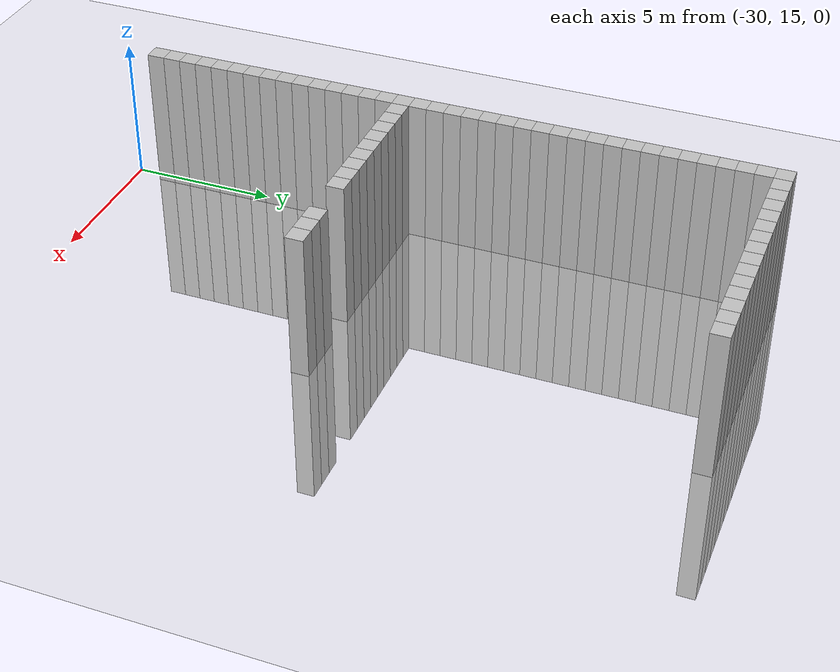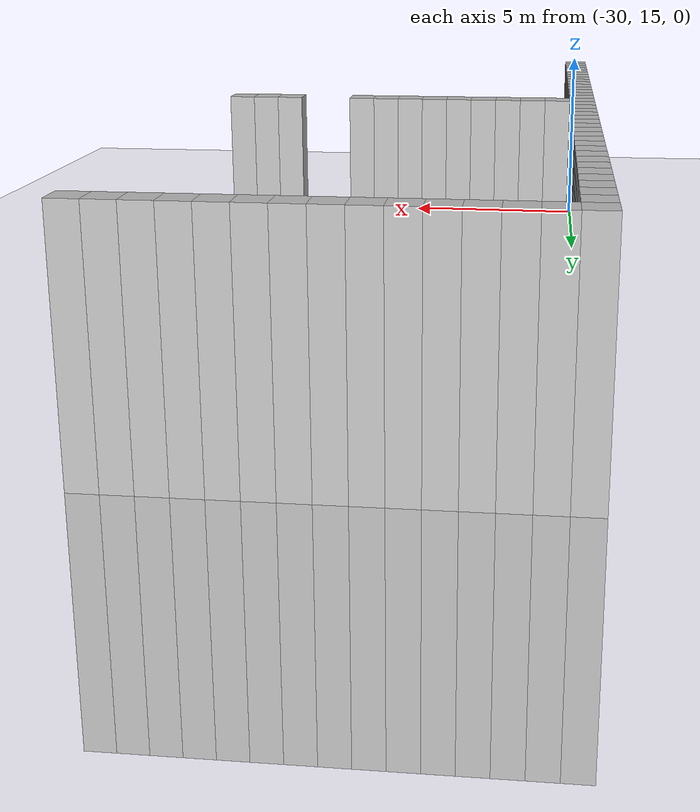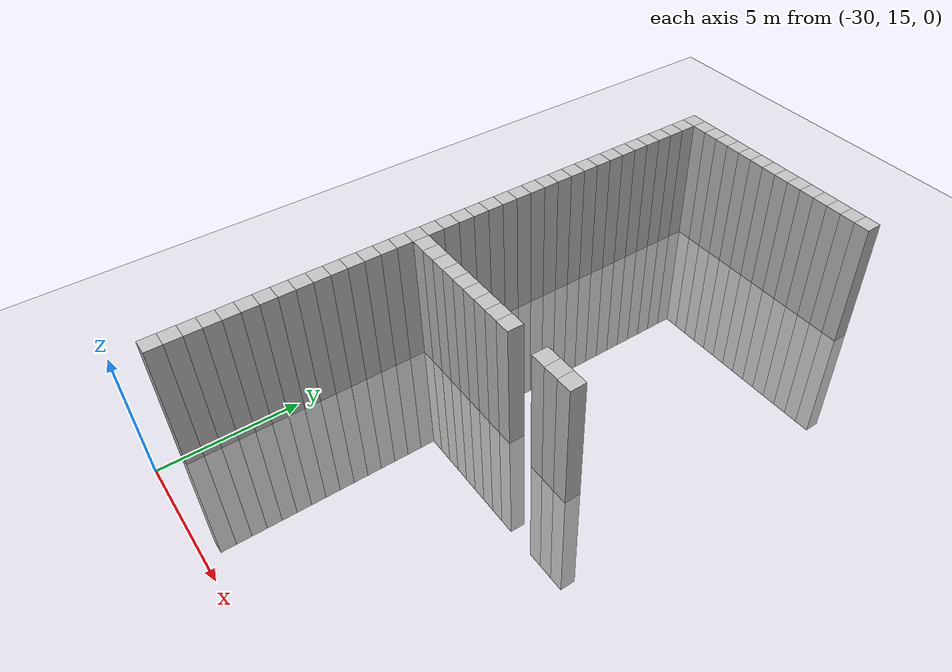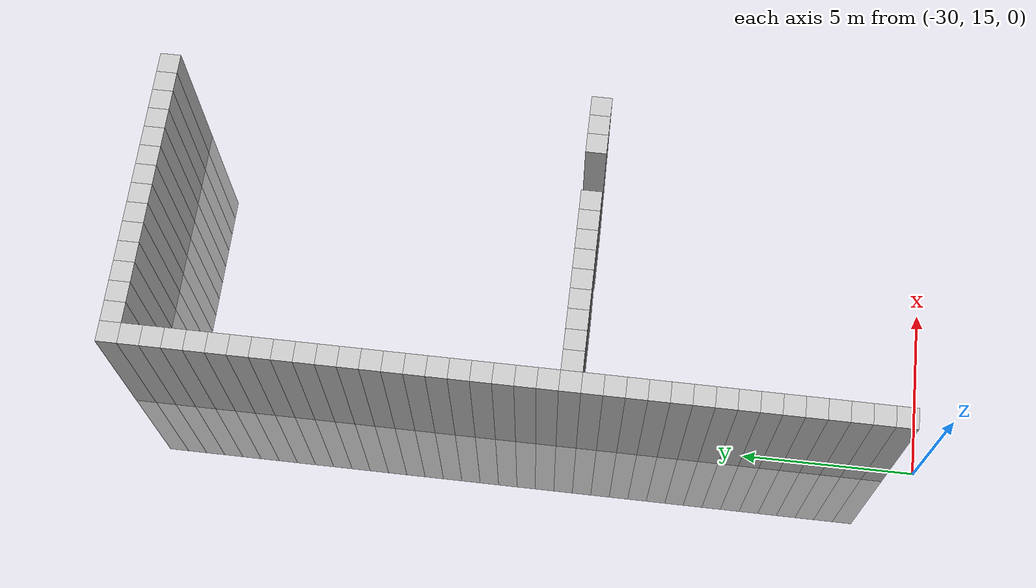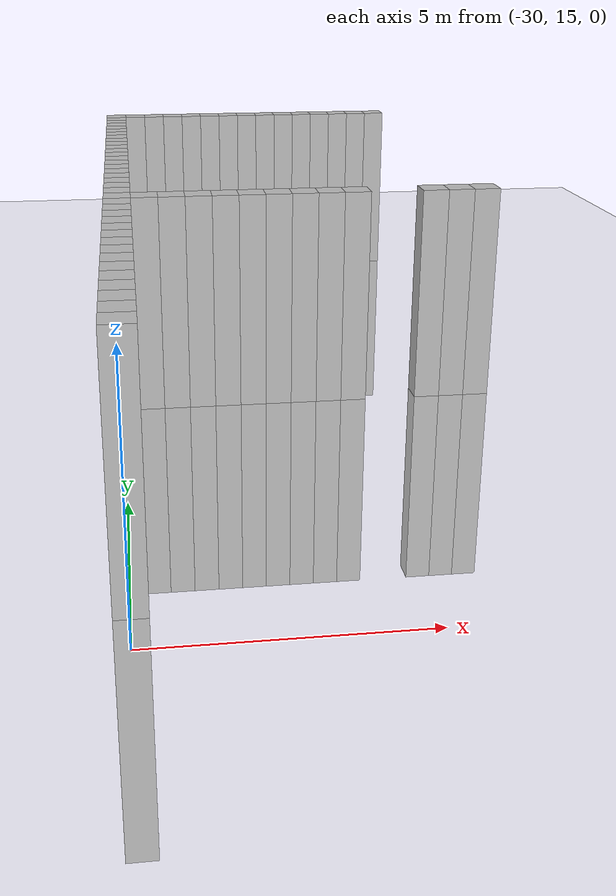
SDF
<sdf version="1.6">
 <world name="default">
  <model name="ground_plane">
   <static>1</static>
   <link name="link">
    <collision name="collision">
     <geometry><plane><normal>0 0 1</normal><size>100 100</size></plane></geometry>
     <surface><friction><ode><mu>100</mu><mu2>50</mu2></ode></friction></surface>
    </collision>
    <visual name="visual">
     <cast_shadows>0</cast_shadows>
     <geometry><plane><normal>0 0 1</normal><size>100 100</size></plane></geometry>
     <material>
      <script><uri>file://media/materials/scripts/gazebo.material</uri><name>Gazebo/Grey</name></script>
     </material>
    </visual>
   </link>
  </model>
  <model name="unit_cylinder_360">
   <static>1</static>
   <pose>-30 16.2 0 0 -0 0</pose>
   <link name="link">
    <inertial>
     <mass>1</mass>
     <inertia><ixx>0.145833</ixx><ixy>0</ixy><ixz>0</ixz><iyy>0.145833</iyy><iyz>0</iyz><izz>0.125</izz></inertia>
    </inertial>
    <collision name="collision"><geometry><box><size>0.6 0.6 10</size></box></geometry></collision>
    <visual name="visual">
     <geometry><box><size>0.6 0.6 10</size></box></geometry>
     <material><ambient>0.753 0.753 0.753 1</ambient><diffuse>0.753 0.753 0.753 1</diffuse></material>
     <material>
      <script><name>Gazebo/Grey</name><uri>file://media/materials/scripts/gazebo.material</uri></script>
     </material>
    </visual>
   </link>
  </model>
  <model name="unit_cylinder_361">
   <static>1</static>
   <pose>-30 16.8 0 0 -0 0</pose>
   <link name="link">
    <inertial>
     <mass>1</mass>
     <inertia><ixx>0.145833</ixx><ixy>0</ixy><ixz>0</ixz><iyy>0.145833</iyy><iyz>0</iyz><izz>0.125</izz></inertia>
    </inertial>
    <collision name="collision"><geometry><box><size>0.6 0.6 10</size></box></geometry></collision>
    <visual name="visual">
     <geometry><box><size>0.6 0.6 10</size></box></geometry>
     <material><ambient>0.753 0.753 0.753 1</ambient><diffuse>0.753 0.753 0.753 1</diffuse></material>
     <material>
      <script><name>Gazebo/Grey</name><uri>file://media/materials/scripts/gazebo.material</uri></script>
     </material>
    </visual>
   </link>
  </model>
  <model name="unit_cylinder_362">
   <static>1</static>
   <pose>-30 17.4 0 0 -0 0</pose>
   <link name="link">
    <inertial>
     <mass>1</mass>
     <inertia><ixx>0.145833</ixx><ixy>0</ixy><ixz>0</ixz><iyy>0.145833</iyy><iyz>0</iyz><izz>0.125</izz></inertia>
    </inertial>
    <collision name="collision"><geometry><box><size>0.6 0.6 10</size></box></geometry></collision>
    <visual name="visual">
     <geometry><box><size>0.6 0.6 10</size></box></geometry>
     <material><ambient>0.753 0.753 0.753 1</ambient><diffuse>0.753 0.753 0.753 1</diffuse></material>
     <material>
      <script><name>Gazebo/Grey</name><uri>file://media/materials/scripts/gazebo.material</uri></script>
     </material>
    </visual>
   </link>
  </model>
  <model name="unit_cylinder_363">
   <static>1</static>
   <pose>-30 18 0 0 -0 0</pose>
   <link name="link">
    <inertial>
     <mass>1</mass>
     <inertia><ixx>0.145833</ixx><ixy>0</ixy><ixz>0</ixz><iyy>0.145833</iyy><iyz>0</iyz><izz>0.125</izz></inertia>
    </inertial>
    <collision name="collision"><geometry><box><size>0.6 0.6 10</size></box></geometry></collision>
    <visual name="visual">
     <geometry><box><size>0.6 0.6 10</size></box></geometry>
     <material><ambient>0.753 0.753 0.753 1</ambient><diffuse>0.753 0.753 0.753 1</diffuse></material>
     <material>
      <script><name>Gazebo/Grey</name><uri>file://media/materials/scripts/gazebo.material</uri></script>
     </material>
    </visual>
   </link>
  </model>
  <model name="unit_cylinder_364">
   <static>1</static>
   <pose>-30 18.6 0 0 -0 0</pose>
   <link name="link">
    <inertial>
     <mass>1</mass>
     <inertia><ixx>0.145833</ixx><ixy>0</ixy><ixz>0</ixz><iyy>0.145833</iyy><iyz>0</iyz><izz>0.125</izz></inertia>
    </inertial>
    <collision name="collision"><geometry><box><size>0.6 0.6 10</size></box></geometry></collision>
    <visual name="visual">
     <geometry><box><size>0.6 0.6 10</size></box></geometry>
     <material><ambient>0.753 0.753 0.753 1</ambient><diffuse>0.753 0.753 0.753 1</diffuse></material>
     <material>
      <script><name>Gazebo/Grey</name><uri>file://media/materials/scripts/gazebo.material</uri></script>
     </material>
    </visual>
   </link>
  </model>
  <model name="unit_cylinder_365">
   <static>1</static>
   <pose>-30 19.2 0 0 -0 0</pose>
   <link name="link">
    <inertial>
     <mass>1</mass>
     <inertia><ixx>0.145833</ixx><ixy>0</ixy><ixz>0</ixz><iyy>0.145833</iyy><iyz>0</iyz><izz>0.125</izz></inertia>
    </inertial>
    <collision name="collision"><geometry><box><size>0.6 0.6 10</size></box></geometry></collision>
    <visual name="visual">
     <geometry><box><size>0.6 0.6 10</size></box></geometry>
     <material><ambient>0.753 0.753 0.753 1</ambient><diffuse>0.753 0.753 0.753 1</diffuse></material>
     <material>
      <script><name>Gazebo/Grey</name><uri>file://media/materials/scripts/gazebo.material</uri></script>
     </material>
    </visual>
   </link>
  </model>
  <model name="unit_cylinder_366">
   <static>1</static>
   <pose>-30 19.8 0 0 -0 0</pose>
   <link name="link">
    <inertial>
     <mass>1</mass>
     <inertia><ixx>0.145833</ixx><ixy>0</ixy><ixz>0</ixz><iyy>0.145833</iyy><iyz>0</iyz><izz>0.125</izz></inertia>
    </inertial>
    <collision name="collision"><geometry><box><size>0.6 0.6 10</size></box></geometry></collision>
    <visual name="visual">
     <geometry><box><size>0.6 0.6 10</size></box></geometry>
     <material><ambient>0.753 0.753 0.753 1</ambient><diffuse>0.753 0.753 0.753 1</diffuse></material>
     <material>
      <script><name>Gazebo/Grey</name><uri>file://media/materials/scripts/gazebo.material</uri></script>
     </material>
    </visual>
   </link>
  </model>
  <model name="unit_cylinder_367">
   <static>1</static>
   <pose>-30 20.4 0 0 -0 0</pose>
   <link name="link">
    <inertial>
     <mass>1</mass>
     <inertia><ixx>0.145833</ixx><ixy>0</ixy><ixz>0</ixz><iyy>0.145833</iyy><iyz>0</iyz><izz>0.125</izz></inertia>
    </inertial>
    <collision name="collision"><geometry><box><size>0.6 0.6 10</size></box></geometry></collision>
    <visual name="visual">
     <geometry><box><size>0.6 0.6 10</size></box></geometry>
     <material><ambient>0.753 0.753 0.753 1</ambient><diffuse>0.753 0.753 0.753 1</diffuse></material>
     <material>
      <script><name>Gazebo/Grey</name><uri>file://media/materials/scripts/gazebo.material</uri></script>
     </material>
    </visual>
   </link>
  </model>
  <model name="unit_cylinder_368">
   <static>1</static>
   <pose>-30 21 0 0 -0 0</pose>
   <link name="link">
    <inertial>
     <mass>1</mass>
     <inertia><ixx>0.145833</ixx><ixy>0</ixy><ixz>0</ixz><iyy>0.145833</iyy><iyz>0</iyz><izz>0.125</izz></inertia>
    </inertial>
    <collision name="collision"><geometry><box><size>0.6 0.6 10</size></box></geometry></collision>
    <visual name="visual">
     <geometry><box><size>0.6 0.6 10</size></box></geometry>
     <material><ambient>0.753 0.753 0.753 1</ambient><diffuse>0.753 0.753 0.753 1</diffuse></material>
     <material>
      <script><name>Gazebo/Grey</name><uri>file://media/materials/scripts/gazebo.material</uri></script>
     </material>
    </visual>
   </link>
  </model>
  <model name="unit_cylinder_369">
   <static>1</static>
   <pose>-30 21.6 0 0 -0 0</pose>
   <link name="link">
    <inertial>
     <mass>1</mass>
     <inertia><ixx>0.145833</ixx><ixy>0</ixy><ixz>0</ixz><iyy>0.145833</iyy><iyz>0</iyz><izz>0.125</izz></inertia>
    </inertial>
    <collision name="collision"><geometry><box><size>0.6 0.6 10</size></box></geometry></collision>
    <visual name="visual">
     <geometry><box><size>0.6 0.6 10</size></box></geometry>
     <material><ambient>0.753 0.753 0.753 1</ambient><diffuse>0.753 0.753 0.753 1</diffuse></material>
     <material>
      <script><name>Gazebo/Grey</name><uri>file://media/materials/scripts/gazebo.material</uri></script>
     </material>
    </visual>
   </link>
  </model>
  <model name="unit_cylinder_370">
   <static>1</static>
   <pose>-30 22.2 0 0 -0 0</pose>
   <link name="link">
    <inertial>
     <mass>1</mass>
     <inertia><ixx>0.145833</ixx><ixy>0</ixy><ixz>0</ixz><iyy>0.145833</iyy><iyz>0</iyz><izz>0.125</izz></inertia>
    </inertial>
    <collision name="collision"><geometry><box><size>0.6 0.6 10</size></box></geometry></collision>
    <visual name="visual">
     <geometry><box><size>0.6 0.6 10</size></box></geometry>
     <material><ambient>0.753 0.753 0.753 1</ambient><diffuse>0.753 0.753 0.753 1</diffuse></material>
     <material>
      <script><name>Gazebo/Grey</name><uri>file://media/materials/scripts/gazebo.material</uri></script>
     </material>
    </visual>
   </link>
  </model>
  <model name="unit_cylinder_371">
   <static>1</static>
   <pose>-30 22.8 0 0 -0 0</pose>
   <link name="link">
    <inertial>
     <mass>1</mass>
     <inertia><ixx>0.145833</ixx><ixy>0</ixy><ixz>0</ixz><iyy>0.145833</iyy><iyz>0</iyz><izz>0.125</izz></inertia>
    </inertial>
    <collision name="collision"><geometry><box><size>0.6 0.6 10</size></box></geometry></collision>
    <visual name="visual">
     <geometry><box><size>0.6 0.6 10</size></box></geometry>
     <material><ambient>0.753 0.753 0.753 1</ambient><diffuse>0.753 0.753 0.753 1</diffuse></material>
     <material>
      <script><name>Gazebo/Grey</name><uri>file://media/materials/scripts/gazebo.material</uri></script>
     </material>
    </visual>
   </link>
  </model>
  <model name="unit_cylinder_372">
   <static>1</static>
   <pose>-30 23.4 0 0 -0 0</pose>
   <link name="link">
    <inertial>
     <mass>1</mass>
     <inertia><ixx>0.145833</ixx><ixy>0</ixy><ixz>0</ixz><iyy>0.145833</iyy><iyz>0</iyz><izz>0.125</izz></inertia>
    </inertial>
    <collision name="collision"><geometry><box><size>0.6 0.6 10</size></box></geometry></collision>
    <visual name="visual">
     <geometry><box><size>0.6 0.6 10</size></box></geometry>
     <material><ambient>0.753 0.753 0.753 1</ambient><diffuse>0.753 0.753 0.753 1</diffuse></material>
     <material>
      <script><name>Gazebo/Grey</name><uri>file://media/materials/scripts/gazebo.material</uri></script>
     </material>
    </visual>
   </link>
  </model>
  <model name="unit_cylinder_373">
   <static>1</static>
   <pose>-30 24 0 0 -0 0</pose>
   <link name="link">
    <inertial>
     <mass>1</mass>
     <inertia><ixx>0.145833</ixx><ixy>0</ixy><ixz>0</ixz><iyy>0.145833</iyy><iyz>0</iyz><izz>0.125</izz></inertia>
    </inertial>
    <collision name="collision"><geometry><box><size>0.6 0.6 10</size></box></geometry></collision>
    <visual name="visual">
     <geometry><box><size>0.6 0.6 10</size></box></geometry>
     <material><ambient>0.753 0.753 0.753 1</ambient><diffuse>0.753 0.753 0.753 1</diffuse></material>
     <material>
      <script><name>Gazebo/Grey</name><uri>file://media/materials/scripts/gazebo.material</uri></script>
     </material>
    </visual>
   </link>
  </model>
  <model name="unit_cylinder_374">
   <static>1</static>
   <pose>-30 24.6 0 0 -0 0</pose>
   <link name="link">
    <inertial>
     <mass>1</mass>
     <inertia><ixx>0.145833</ixx><ixy>0</ixy><ixz>0</ixz><iyy>0.145833</iyy><iyz>0</iyz><izz>0.125</izz></inertia>
    </inertial>
    <collision name="collision"><geometry><box><size>0.6 0.6 10</size></box></geometry></collision>
    <visual name="visual">
     <geometry><box><size>0.6 0.6 10</size></box></geometry>
     <material><ambient>0.753 0.753 0.753 1</ambient><diffuse>0.753 0.753 0.753 1</diffuse></material>
     <material>
      <script><name>Gazebo/Grey</name><uri>file://media/materials/scripts/gazebo.material</uri></script>
     </material>
    </visual>
   </link>
  </model>
  <model name="unit_cylinder_375">
   <static>1</static>
   <pose>-30 25.2 0 0 -0 0</pose>
   <link name="link">
    <inertial>
     <mass>1</mass>
     <inertia><ixx>0.145833</ixx><ixy>0</ixy><ixz>0</ixz><iyy>0.145833</iyy><iyz>0</iyz><izz>0.125</izz></inertia>
    </inertial>
    <collision name="collision"><geometry><box><size>0.6 0.6 10</size></box></geometry></collision>
    <visual name="visual">
     <geometry><box><size>0.6 0.6 10</size></box></geometry>
     <material><ambient>0.753 0.753 0.753 1</ambient><diffuse>0.753 0.753 0.753 1</diffuse></material>
     <material>
      <script><name>Gazebo/Grey</name><uri>file://media/materials/scripts/gazebo.material</uri></script>
     </material>
    </visual>
   </link>
  </model>
  <model name="unit_cylinder_376">
   <static>1</static>
   <pose>-30 25.8 0 0 -0 0</pose>
   <link name="link">
    <inertial>
     <mass>1</mass>
     <inertia><ixx>0.145833</ixx><ixy>0</ixy><ixz>0</ixz><iyy>0.145833</iyy><iyz>0</iyz><izz>0.125</izz></inertia>
    </inertial>
    <collision name="collision"><geometry><box><size>0.6 0.6 10</size></box></geometry></collision>
    <visual name="visual">
     <geometry><box><size>0.6 0.6 10</size></box></geometry>
     <material><ambient>0.753 0.753 0.753 1</ambient><diffuse>0.753 0.753 0.753 1</diffuse></material>
     <material>
      <script><name>Gazebo/Grey</name><uri>file://media/materials/scripts/gazebo.material</uri></script>
     </material>
    </visual>
   </link>
  </model>
  <model name="unit_cylinder_377">
   <static>1</static>
   <pose>-30 26.4 0 0 -0 0</pose>
   <link name="link">
    <inertial>
     <mass>1</mass>
     <inertia><ixx>0.145833</ixx><ixy>0</ixy><ixz>0</ixz><iyy>0.145833</iyy><iyz>0</iyz><izz>0.125</izz></inertia>
    </inertial>
    <collision name="collision"><geometry><box><size>0.6 0.6 10</size></box></geometry></collision>
    <visual name="visual">
     <geometry><box><size>0.6 0.6 10</size></box></geometry>
     <material><ambient>0.753 0.753 0.753 1</ambient><diffuse>0.753 0.753 0.753 1</diffuse></material>
     <material>
      <script><name>Gazebo/Grey</name><uri>file://media/materials/scripts/gazebo.material</uri></script>
     </material>
    </visual>
   </link>
  </model>
  <model name="unit_cylinder_378">
   <static>1</static>
   <pose>-30 27 0 0 -0 0</pose>
   <link name="link">
    <inertial>
     <mass>1</mass>
     <inertia><ixx>0.145833</ixx><ixy>0</ixy><ixz>0</ixz><iyy>0.145833</iyy><iyz>0</iyz><izz>0.125</izz></inertia>
    </inertial>
    <collision name="collision"><geometry><box><size>0.6 0.6 10</size></box></geometry></collision>
    <visual name="visual">
     <geometry><box><size>0.6 0.6 10</size></box></geometry>
     <material><ambient>0.753 0.753 0.753 1</ambient><diffuse>0.753 0.753 0.753 1</diffuse></material>
     <material>
      <script><name>Gazebo/Grey</name><uri>file://media/materials/scripts/gazebo.material</uri></script>
     </material>
    </visual>
   </link>
  </model>
  <model name="unit_cylinder_379">
   <static>1</static>
   <pose>-30 27.6 0 0 -0 0</pose>
   <link name="link">
    <inertial>
     <mass>1</mass>
     <inertia><ixx>0.145833</ixx><ixy>0</ixy><ixz>0</ixz><iyy>0.145833</iyy><iyz>0</iyz><izz>0.125</izz></inertia>
    </inertial>
    <collision name="collision"><geometry><box><size>0.6 0.6 10</size></box></geometry></collision>
    <visual name="visual">
     <geometry><box><size>0.6 0.6 10</size></box></geometry>
     <material><ambient>0.753 0.753 0.753 1</ambient><diffuse>0.753 0.753 0.753 1</diffuse></material>
     <material>
      <script><name>Gazebo/Grey</name><uri>file://media/materials/scripts/gazebo.material</uri></script>
     </material>
    </visual>
   </link>
  </model>
  <model name="unit_cylinder_380">
   <static>1</static>
   <pose>-30 28.2 0 0 -0 0</pose>
   <link name="link">
    <inertial>
     <mass>1</mass>
     <inertia><ixx>0.145833</ixx><ixy>0</ixy><ixz>0</ixz><iyy>0.145833</iyy><iyz>0</iyz><izz>0.125</izz></inertia>
    </inertial>
    <collision name="collision"><geometry><box><size>0.6 0.6 10</size></box></geometry></collision>
    <visual name="visual">
     <geometry><box><size>0.6 0.6 10</size></box></geometry>
     <material><ambient>0.753 0.753 0.753 1</ambient><diffuse>0.753 0.753 0.753 1</diffuse></material>
     <material>
      <script><name>Gazebo/Grey</name><uri>file://media/materials/scripts/gazebo.material</uri></script>
     </material>
    </visual>
   </link>
  </model>
  <model name="unit_cylinder_381">
   <static>1</static>
   <pose>-30 28.8 0 0 -0 0</pose>
   <link name="link">
    <inertial>
     <mass>1</mass>
     <inertia><ixx>0.145833</ixx><ixy>0</ixy><ixz>0</ixz><iyy>0.145833</iyy><iyz>0</iyz><izz>0.125</izz></inertia>
    </inertial>
    <collision name="collision"><geometry><box><size>0.6 0.6 10</size></box></geometry></collision>
    <visual name="visual">
     <geometry><box><size>0.6 0.6 10</size></box></geometry>
     <material><ambient>0.753 0.753 0.753 1</ambient><diffuse>0.753 0.753 0.753 1</diffuse></material>
     <material>
      <script><name>Gazebo/Grey</name><uri>file://media/materials/scripts/gazebo.material</uri></script>
     </material>
    </visual>
   </link>
  </model>
  <model name="unit_cylinder_382">
   <static>1</static>
   <pose>-30 29.4 0 0 -0 0</pose>
   <link name="link">
    <inertial>
     <mass>1</mass>
     <inertia><ixx>0.145833</ixx><ixy>0</ixy><ixz>0</ixz><iyy>0.145833</iyy><iyz>0</iyz><izz>0.125</izz></inertia>
    </inertial>
    <collision name="collision"><geometry><box><size>0.6 0.6 10</size></box></geometry></collision>
    <visual name="visual">
     <geometry><box><size>0.6 0.6 10</size></box></geometry>
     <material><ambient>0.753 0.753 0.753 1</ambient><diffuse>0.753 0.753 0.753 1</diffuse></material>
     <material>
      <script><name>Gazebo/Grey</name><uri>file://media/materials/scripts/gazebo.material</uri></script>
     </material>
    </visual>
   </link>
  </model>
  <model name="unit_cylinder_383">
   <static>1</static>
   <pose>-30 30 0 0 -0 0</pose>
   <link name="link">
    <inertial>
     <mass>1</mass>
     <inertia><ixx>0.145833</ixx><ixy>0</ixy><ixz>0</ixz><iyy>0.145833</iyy><iyz>0</iyz><izz>0.125</izz></inertia>
    </inertial>
    <collision name="collision"><geometry><box><size>0.6 0.6 10</size></box></geometry></collision>
    <visual name="visual">
     <geometry><box><size>0.6 0.6 10</size></box></geometry>
     <material><ambient>0.753 0.753 0.753 1</ambient><diffuse>0.753 0.753 0.753 1</diffuse></material>
     <material>
      <script><name>Gazebo/Grey</name><uri>file://media/materials/scripts/gazebo.material</uri></script>
     </material>
    </visual>
   </link>
  </model>
  <model name="unit_cylinder_384">
   <static>1</static>
   <pose>-30 30.6 0 0 -0 0</pose>
   <link name="link">
    <inertial>
     <mass>1</mass>
     <inertia><ixx>0.145833</ixx><ixy>0</ixy><ixz>0</ixz><iyy>0.145833</iyy><iyz>0</iyz><izz>0.125</izz></inertia>
    </inertial>
    <collision name="collision"><geometry><box><size>0.6 0.6 10</size></box></geometry></collision>
    <visual name="visual">
     <geometry><box><size>0.6 0.6 10</size></box></geometry>
     <material><ambient>0.753 0.753 0.753 1</ambient><diffuse>0.753 0.753 0.753 1</diffuse></material>
     <material>
      <script><name>Gazebo/Grey</name><uri>file://media/materials/scripts/gazebo.material</uri></script>
     </material>
    </visual>
   </link>
  </model>
  <model name="unit_cylinder_385">
   <static>1</static>
   <pose>-30 31.2 0 0 -0 0</pose>
   <link name="link">
    <inertial>
     <mass>1</mass>
     <inertia><ixx>0.145833</ixx><ixy>0</ixy><ixz>0</ixz><iyy>0.145833</iyy><iyz>0</iyz><izz>0.125</izz></inertia>
    </inertial>
    <collision name="collision"><geometry><box><size>0.6 0.6 10</size></box></geometry></collision>
    <visual name="visual">
     <geometry><box><size>0.6 0.6 10</size></box></geometry>
     <material><ambient>0.753 0.753 0.753 1</ambient><diffuse>0.753 0.753 0.753 1</diffuse></material>
     <material>
      <script><name>Gazebo/Grey</name><uri>file://media/materials/scripts/gazebo.material</uri></script>
     </material>
    </visual>
   </link>
  </model>
  <model name="unit_cylinder_386">
   <static>1</static>
   <pose>-30 31.8 0 0 -0 0</pose>
   <link name="link">
    <inertial>
     <mass>1</mass>
     <inertia><ixx>0.145833</ixx><ixy>0</ixy><ixz>0</ixz><iyy>0.145833</iyy><iyz>0</iyz><izz>0.125</izz></inertia>
    </inertial>
    <collision name="collision"><geometry><box><size>0.6 0.6 10</size></box></geometry></collision>
    <visual name="visual">
     <geometry><box><size>0.6 0.6 10</size></box></geometry>
     <material><ambient>0.753 0.753 0.753 1</ambient><diffuse>0.753 0.753 0.753 1</diffuse></material>
     <material>
      <script><name>Gazebo/Grey</name><uri>file://media/materials/scripts/gazebo.material</uri></script>
     </material>
    </visual>
   </link>
  </model>
  <model name="unit_cylinder_387">
   <static>1</static>
   <pose>-30 32.4 0 0 -0 0</pose>
   <link name="link">
    <inertial>
     <mass>1</mass>
     <inertia><ixx>0.145833</ixx><ixy>0</ixy><ixz>0</ixz><iyy>0.145833</iyy><iyz>0</iyz><izz>0.125</izz></inertia>
    </inertial>
    <collision name="collision"><geometry><box><size>0.6 0.6 10</size></box></geometry></collision>
    <visual name="visual">
     <geometry><box><size>0.6 0.6 10</size></box></geometry>
     <material><ambient>0.753 0.753 0.753 1</ambient><diffuse>0.753 0.753 0.753 1</diffuse></material>
     <material>
      <script><name>Gazebo/Grey</name><uri>file://media/materials/scripts/gazebo.material</uri></script>
     </material>
    </visual>
   </link>
  </model>
  <model name="unit_cylinder_388">
   <static>1</static>
   <pose>-30 33 0 0 -0 0</pose>
   <link name="link">
    <inertial>
     <mass>1</mass>
     <inertia><ixx>0.145833</ixx><ixy>0</ixy><ixz>0</ixz><iyy>0.145833</iyy><iyz>0</iyz><izz>0.125</izz></inertia>
    </inertial>
    <collision name="collision"><geometry><box><size>0.6 0.6 10</size></box></geometry></collision>
    <visual name="visual">
     <geometry><box><size>0.6 0.6 10</size></box></geometry>
     <material><ambient>0.753 0.753 0.753 1</ambient><diffuse>0.753 0.753 0.753 1</diffuse></material>
     <material>
      <script><name>Gazebo/Grey</name><uri>file://media/materials/scripts/gazebo.material</uri></script>
     </material>
    </visual>
   </link>
  </model>
  <model name="unit_cylinder_389">
   <static>1</static>
   <pose>-30 33.6 0 0 -0 0</pose>
   <link name="link">
    <inertial>
     <mass>1</mass>
     <inertia><ixx>0.145833</ixx><ixy>0</ixy><ixz>0</ixz><iyy>0.145833</iyy><iyz>0</iyz><izz>0.125</izz></inertia>
    </inertial>
    <collision name="collision"><geometry><box><size>0.6 0.6 10</size></box></geometry></collision>
    <visual name="visual">
     <geometry><box><size>0.6 0.6 10</size></box></geometry>
     <material><ambient>0.753 0.753 0.753 1</ambient><diffuse>0.753 0.753 0.753 1</diffuse></material>
     <material>
      <script><name>Gazebo/Grey</name><uri>file://media/materials/scripts/gazebo.material</uri></script>
     </material>
    </visual>
   </link>
  </model>
  <model name="unit_cylinder_390">
   <static>1</static>
   <pose>-30 34.2 0 0 -0 0</pose>
   <link name="link">
    <inertial>
     <mass>1</mass>
     <inertia><ixx>0.145833</ixx><ixy>0</ixy><ixz>0</ixz><iyy>0.145833</iyy><iyz>0</iyz><izz>0.125</izz></inertia>
    </inertial>
    <collision name="collision"><geometry><box><size>0.6 0.6 10</size></box></geometry></collision>
    <visual name="visual">
     <geometry><box><size>0.6 0.6 10</size></box></geometry>
     <material><ambient>0.753 0.753 0.753 1</ambient><diffuse>0.753 0.753 0.753 1</diffuse></material>
     <material>
      <script><name>Gazebo/Grey</name><uri>file://media/materials/scripts/gazebo.material</uri></script>
     </material>
    </visual>
   </link>
  </model>
  <model name="unit_cylinder_391">
   <static>1</static>
   <pose>-30 34.8 0 0 -0 0</pose>
   <link name="link">
    <inertial>
     <mass>1</mass>
     <inertia><ixx>0.145833</ixx><ixy>0</ixy><ixz>0</ixz><iyy>0.145833</iyy><iyz>0</iyz><izz>0.125</izz></inertia>
    </inertial>
    <collision name="collision"><geometry><box><size>0.6 0.6 10</size></box></geometry></collision>
    <visual name="visual">
     <geometry><box><size>0.6 0.6 10</size></box></geometry>
     <material><ambient>0.753 0.753 0.753 1</ambient><diffuse>0.753 0.753 0.753 1</diffuse></material>
     <material>
      <script><name>Gazebo/Grey</name><uri>file://media/materials/scripts/gazebo.material</uri></script>
     </material>
    </visual>
   </link>
  </model>
  <model name="unit_cylinder_392">
   <static>1</static>
   <pose>-30 35.4 0 0 -0 0</pose>
   <link name="link">
    <inertial>
     <mass>1</mass>
     <inertia><ixx>0.145833</ixx><ixy>0</ixy><ixz>0</ixz><iyy>0.145833</iyy><iyz>0</iyz><izz>0.125</izz></inertia>
    </inertial>
    <collision name="collision"><geometry><box><size>0.6 0.6 10</size></box></geometry></collision>
    <visual name="visual">
     <geometry><box><size>0.6 0.6 10</size></box></geometry>
     <material><ambient>0.753 0.753 0.753 1</ambient><diffuse>0.753 0.753 0.753 1</diffuse></material>
     <material>
      <script><name>Gazebo/Grey</name><uri>file://media/materials/scripts/gazebo.material</uri></script>
     </material>
    </visual>
   </link>
  </model>
  <model name="unit_cylinder_393">
   <static>1</static>
   <pose>-30 36 0 0 -0 0</pose>
   <link name="link">
    <inertial>
     <mass>1</mass>
     <inertia><ixx>0.145833</ixx><ixy>0</ixy><ixz>0</ixz><iyy>0.145833</iyy><iyz>0</iyz><izz>0.125</izz></inertia>
    </inertial>
    <collision name="collision"><geometry><box><size>0.6 0.6 10</size></box></geometry></collision>
    <visual name="visual">
     <geometry><box><size>0.6 0.6 10</size></box></geometry>
     <material><ambient>0.753 0.753 0.753 1</ambient><diffuse>0.753 0.753 0.753 1</diffuse></material>
     <material>
      <script><name>Gazebo/Grey</name><uri>file://media/materials/scripts/gazebo.material</uri></script>
     </material>
    </visual>
   </link>
  </model>
  <model name="unit_cylinder_394">
   <static>1</static>
   <pose>-30 36.6 0 0 -0 0</pose>
   <link name="link">
    <inertial>
     <mass>1</mass>
     <inertia><ixx>0.145833</ixx><ixy>0</ixy><ixz>0</ixz><iyy>0.145833</iyy><iyz>0</iyz><izz>0.125</izz></inertia>
    </inertial>
    <collision name="collision"><geometry><box><size>0.6 0.6 10</size></box></geometry></collision>
    <visual name="visual">
     <geometry><box><size>0.6 0.6 10</size></box></geometry>
     <material><ambient>0.753 0.753 0.753 1</ambient><diffuse>0.753 0.753 0.753 1</diffuse></material>
     <material>
      <script><name>Gazebo/Grey</name><uri>file://media/materials/scripts/gazebo.material</uri></script>
     </material>
    </visual>
   </link>
  </model>
  <model name="unit_cylinder_395">
   <static>1</static>
   <pose>-30 37.2 0 0 -0 0</pose>
   <link name="link">
    <inertial>
     <mass>1</mass>
     <inertia><ixx>0.145833</ixx><ixy>0</ixy><ixz>0</ixz><iyy>0.145833</iyy><iyz>0</iyz><izz>0.125</izz></inertia>
    </inertial>
    <collision name="collision"><geometry><box><size>0.6 0.6 10</size></box></geometry></collision>
    <visual name="visual">
     <geometry><box><size>0.6 0.6 10</size></box></geometry>
     <material><ambient>0.753 0.753 0.753 1</ambient><diffuse>0.753 0.753 0.753 1</diffuse></material>
     <material>
      <script><name>Gazebo/Grey</name><uri>file://media/materials/scripts/gazebo.material</uri></script>
     </material>
    </visual>
   </link>
  </model>
  <model name="unit_cylinder_396">
   <static>1</static>
   <pose>-30 37.8 0 0 -0 0</pose>
   <link name="link">
    <inertial>
     <mass>1</mass>
     <inertia><ixx>0.145833</ixx><ixy>0</ixy><ixz>0</ixz><iyy>0.145833</iyy><iyz>0</iyz><izz>0.125</izz></inertia>
    </inertial>
    <collision name="collision"><geometry><box><size>0.6 0.6 10</size></box></geometry></collision>
    <visual name="visual">
     <geometry><box><size>0.6 0.6 10</size></box></geometry>
     <material><ambient>0.753 0.753 0.753 1</ambient><diffuse>0.753 0.753 0.753 1</diffuse></material>
     <material>
      <script><name>Gazebo/Grey</name><uri>file://media/materials/scripts/gazebo.material</uri></script>
     </material>
    </visual>
   </link>
  </model>
  <model name="unit_cylinder_399">
   <static>1</static>
   <pose>-29.4 25.2 0 0 -0 0</pose>
   <link name="link">
    <inertial>
     <mass>1</mass>
     <inertia><ixx>0.145833</ixx><ixy>0</ixy><ixz>0</ixz><iyy>0.145833</iyy><iyz>0</iyz><izz>0.125</izz></inertia>
    </inertial>
    <collision name="collision"><geometry><box><size>0.6 0.6 10</size></box></geometry></collision>
    <visual name="visual">
     <geometry><box><size>0.6 0.6 10</size></box></geometry>
     <material><ambient>0.753 0.753 0.753 1</ambient><diffuse>0.753 0.753 0.753 1</diffuse></material>
     <material>
      <script><name>Gazebo/Grey</name><uri>file://media/materials/scripts/gazebo.material</uri></script>
     </material>
    </visual>
   </link>
  </model>
  <model name="unit_cylinder_400">
   <static>1</static>
   <pose>-29.4 37.8 0 0 -0 0</pose>
   <link name="link">
    <inertial>
     <mass>1</mass>
     <inertia><ixx>0.145833</ixx><ixy>0</ixy><ixz>0</ixz><iyy>0.145833</iyy><iyz>0</iyz><izz>0.125</izz></inertia>
    </inertial>
    <collision name="collision"><geometry><box><size>0.6 0.6 10</size></box></geometry></collision>
    <visual name="visual">
     <geometry><box><size>0.6 0.6 10</size></box></geometry>
     <material><ambient>0.753 0.753 0.753 1</ambient><diffuse>0.753 0.753 0.753 1</diffuse></material>
     <material>
      <script><name>Gazebo/Grey</name><uri>file://media/materials/scripts/gazebo.material</uri></script>
     </material>
    </visual>
   </link>
  </model>
  <model name="unit_cylinder_403">
   <static>1</static>
   <pose>-28.8 25.2 0 0 -0 0</pose>
   <link name="link">
    <inertial>
     <mass>1</mass>
     <inertia><ixx>0.145833</ixx><ixy>0</ixy><ixz>0</ixz><iyy>0.145833</iyy><iyz>0</iyz><izz>0.125</izz></inertia>
    </inertial>
    <collision name="collision"><geometry><box><size>0.6 0.6 10</size></box></geometry></collision>
    <visual name="visual">
     <geometry><box><size>0.6 0.6 10</size></box></geometry>
     <material><ambient>0.753 0.753 0.753 1</ambient><diffuse>0.753 0.753 0.753 1</diffuse></material>
     <material>
      <script><name>Gazebo/Grey</name><uri>file://media/materials/scripts/gazebo.material</uri></script>
     </material>
    </visual>
   </link>
  </model>
  <model name="unit_cylinder_404">
   <static>1</static>
   <pose>-28.8 37.8 0 0 -0 0</pose>
   <link name="link">
    <inertial>
     <mass>1</mass>
     <inertia><ixx>0.145833</ixx><ixy>0</ixy><ixz>0</ixz><iyy>0.145833</iyy><iyz>0</iyz><izz>0.125</izz></inertia>
    </inertial>
    <collision name="collision"><geometry><box><size>0.6 0.6 10</size></box></geometry></collision>
    <visual name="visual">
     <geometry><box><size>0.6 0.6 10</size></box></geometry>
     <material><ambient>0.753 0.753 0.753 1</ambient><diffuse>0.753 0.753 0.753 1</diffuse></material>
     <material>
      <script><name>Gazebo/Grey</name><uri>file://media/materials/scripts/gazebo.material</uri></script>
     </material>
    </visual>
   </link>
  </model>
  <model name="unit_cylinder_407">
   <static>1</static>
   <pose>-28.2 25.2 0 0 -0 0</pose>
   <link name="link">
    <inertial>
     <mass>1</mass>
     <inertia><ixx>0.145833</ixx><ixy>0</ixy><ixz>0</ixz><iyy>0.145833</iyy><iyz>0</iyz><izz>0.125</izz></inertia>
    </inertial>
    <collision name="collision"><geometry><box><size>0.6 0.6 10</size></box></geometry></collision>
    <visual name="visual">
     <geometry><box><size>0.6 0.6 10</size></box></geometry>
     <material><ambient>0.753 0.753 0.753 1</ambient><diffuse>0.753 0.753 0.753 1</diffuse></material>
     <material>
      <script><name>Gazebo/Grey</name><uri>file://media/materials/scripts/gazebo.material</uri></script>
     </material>
    </visual>
   </link>
  </model>
  <model name="unit_cylinder_408">
   <static>1</static>
   <pose>-28.2 37.8 0 0 -0 0</pose>
   <link name="link">
    <inertial>
     <mass>1</mass>
     <inertia><ixx>0.145833</ixx><ixy>0</ixy><ixz>0</ixz><iyy>0.145833</iyy><iyz>0</iyz><izz>0.125</izz></inertia>
    </inertial>
    <collision name="collision"><geometry><box><size>0.6 0.6 10</size></box></geometry></collision>
    <visual name="visual">
     <geometry><box><size>0.6 0.6 10</size></box></geometry>
     <material><ambient>0.753 0.753 0.753 1</ambient><diffuse>0.753 0.753 0.753 1</diffuse></material>
     <material>
      <script><name>Gazebo/Grey</name><uri>file://media/materials/scripts/gazebo.material</uri></script>
     </material>
    </visual>
   </link>
  </model>
  <model name="unit_cylinder_411">
   <static>1</static>
   <pose>-27.6 25.2 0 0 -0 0</pose>
   <link name="link">
    <inertial>
     <mass>1</mass>
     <inertia><ixx>0.145833</ixx><ixy>0</ixy><ixz>0</ixz><iyy>0.145833</iyy><iyz>0</iyz><izz>0.125</izz></inertia>
    </inertial>
    <collision name="collision"><geometry><box><size>0.6 0.6 10</size></box></geometry></collision>
    <visual name="visual">
     <geometry><box><size>0.6 0.6 10</size></box></geometry>
     <material><ambient>0.753 0.753 0.753 1</ambient><diffuse>0.753 0.753 0.753 1</diffuse></material>
     <material>
      <script><name>Gazebo/Grey</name><uri>file://media/materials/scripts/gazebo.material</uri></script>
     </material>
    </visual>
   </link>
  </model>
  <model name="unit_cylinder_412">
   <static>1</static>
   <pose>-27.6 37.8 0 0 -0 0</pose>
   <link name="link">
    <inertial>
     <mass>1</mass>
     <inertia><ixx>0.145833</ixx><ixy>0</ixy><ixz>0</ixz><iyy>0.145833</iyy><iyz>0</iyz><izz>0.125</izz></inertia>
    </inertial>
    <collision name="collision"><geometry><box><size>0.6 0.6 10</size></box></geometry></collision>
    <visual name="visual">
     <geometry><box><size>0.6 0.6 10</size></box></geometry>
     <material><ambient>0.753 0.753 0.753 1</ambient><diffuse>0.753 0.753 0.753 1</diffuse></material>
     <material>
      <script><name>Gazebo/Grey</name><uri>file://media/materials/scripts/gazebo.material</uri></script>
     </material>
    </visual>
   </link>
  </model>
  <model name="unit_cylinder_415">
   <static>1</static>
   <pose>-27 25.2 0 0 -0 0</pose>
   <link name="link">
    <inertial>
     <mass>1</mass>
     <inertia><ixx>0.145833</ixx><ixy>0</ixy><ixz>0</ixz><iyy>0.145833</iyy><iyz>0</iyz><izz>0.125</izz></inertia>
    </inertial>
    <collision name="collision"><geometry><box><size>0.6 0.6 10</size></box></geometry></collision>
    <visual name="visual">
     <geometry><box><size>0.6 0.6 10</size></box></geometry>
     <material><ambient>0.753 0.753 0.753 1</ambient><diffuse>0.753 0.753 0.753 1</diffuse></material>
     <material>
      <script><name>Gazebo/Grey</name><uri>file://media/materials/scripts/gazebo.material</uri></script>
     </material>
    </visual>
   </link>
  </model>
  <model name="unit_cylinder_416">
   <static>1</static>
   <pose>-27 37.8 0 0 -0 0</pose>
   <link name="link">
    <inertial>
     <mass>1</mass>
     <inertia><ixx>0.145833</ixx><ixy>0</ixy><ixz>0</ixz><iyy>0.145833</iyy><iyz>0</iyz><izz>0.125</izz></inertia>
    </inertial>
    <collision name="collision"><geometry><box><size>0.6 0.6 10</size></box></geometry></collision>
    <visual name="visual">
     <geometry><box><size>0.6 0.6 10</size></box></geometry>
     <material><ambient>0.753 0.753 0.753 1</ambient><diffuse>0.753 0.753 0.753 1</diffuse></material>
     <material>
      <script><name>Gazebo/Grey</name><uri>file://media/materials/scripts/gazebo.material</uri></script>
     </material>
    </visual>
   </link>
  </model>
  <model name="unit_cylinder_419">
   <static>1</static>
   <pose>-26.4 25.2 0 0 -0 0</pose>
   <link name="link">
    <inertial>
     <mass>1</mass>
     <inertia><ixx>0.145833</ixx><ixy>0</ixy><ixz>0</ixz><iyy>0.145833</iyy><iyz>0</iyz><izz>0.125</izz></inertia>
    </inertial>
    <collision name="collision"><geometry><box><size>0.6 0.6 10</size></box></geometry></collision>
    <visual name="visual">
     <geometry><box><size>0.6 0.6 10</size></box></geometry>
     <material><ambient>0.753 0.753 0.753 1</ambient><diffuse>0.753 0.753 0.753 1</diffuse></material>
     <material>
      <script><name>Gazebo/Grey</name><uri>file://media/materials/scripts/gazebo.material</uri></script>
     </material>
    </visual>
   </link>
  </model>
  <model name="unit_cylinder_420">
   <static>1</static>
   <pose>-26.4 37.8 0 0 -0 0</pose>
   <link name="link">
    <inertial>
     <mass>1</mass>
     <inertia><ixx>0.145833</ixx><ixy>0</ixy><ixz>0</ixz><iyy>0.145833</iyy><iyz>0</iyz><izz>0.125</izz></inertia>
    </inertial>
    <collision name="collision"><geometry><box><size>0.6 0.6 10</size></box></geometry></collision>
    <visual name="visual">
     <geometry><box><size>0.6 0.6 10</size></box></geometry>
     <material><ambient>0.753 0.753 0.753 1</ambient><diffuse>0.753 0.753 0.753 1</diffuse></material>
     <material>
      <script><name>Gazebo/Grey</name><uri>file://media/materials/scripts/gazebo.material</uri></script>
     </material>
    </visual>
   </link>
  </model>
  <model name="unit_cylinder_423">
   <static>1</static>
   <pose>-25.8 25.2 0 0 -0 0</pose>
   <link name="link">
    <inertial>
     <mass>1</mass>
     <inertia><ixx>0.145833</ixx><ixy>0</ixy><ixz>0</ixz><iyy>0.145833</iyy><iyz>0</iyz><izz>0.125</izz></inertia>
    </inertial>
    <collision name="collision"><geometry><box><size>0.6 0.6 10</size></box></geometry></collision>
    <visual name="visual">
     <geometry><box><size>0.6 0.6 10</size></box></geometry>
     <material><ambient>0.753 0.753 0.753 1</ambient><diffuse>0.753 0.753 0.753 1</diffuse></material>
     <material>
      <script><name>Gazebo/Grey</name><uri>file://media/materials/scripts/gazebo.material</uri></script>
     </material>
    </visual>
   </link>
  </model>
  <model name="unit_cylinder_424">
   <static>1</static>
   <pose>-25.8 37.8 0 0 -0 0</pose>
   <link name="link">
    <inertial>
     <mass>1</mass>
     <inertia><ixx>0.145833</ixx><ixy>0</ixy><ixz>0</ixz><iyy>0.145833</iyy><iyz>0</iyz><izz>0.125</izz></inertia>
    </inertial>
    <collision name="collision"><geometry><box><size>0.6 0.6 10</size></box></geometry></collision>
    <visual name="visual">
     <geometry><box><size>0.6 0.6 10</size></box></geometry>
     <material><ambient>0.753 0.753 0.753 1</ambient><diffuse>0.753 0.753 0.753 1</diffuse></material>
     <material>
      <script><name>Gazebo/Grey</name><uri>file://media/materials/scripts/gazebo.material</uri></script>
     </material>
    </visual>
   </link>
  </model>
  <model name="unit_cylinder_427">
   <static>1</static>
   <pose>-25.2 25.2 0 0 -0 0</pose>
   <link name="link">
    <inertial>
     <mass>1</mass>
     <inertia><ixx>0.145833</ixx><ixy>0</ixy><ixz>0</ixz><iyy>0.145833</iyy><iyz>0</iyz><izz>0.125</izz></inertia>
    </inertial>
    <collision name="collision"><geometry><box><size>0.6 0.6 10</size></box></geometry></collision>
    <visual name="visual">
     <geometry><box><size>0.6 0.6 10</size></box></geometry>
     <material><ambient>0.753 0.753 0.753 1</ambient><diffuse>0.753 0.753 0.753 1</diffuse></material>
     <material>
      <script><name>Gazebo/Grey</name><uri>file://media/materials/scripts/gazebo.material</uri></script>
     </material>
    </visual>
   </link>
  </model>
  <model name="unit_cylinder_428">
   <static>1</static>
   <pose>-25.2 37.8 0 0 -0 0</pose>
   <link name="link">
    <inertial>
     <mass>1</mass>
     <inertia><ixx>0.145833</ixx><ixy>0</ixy><ixz>0</ixz><iyy>0.145833</iyy><iyz>0</iyz><izz>0.125</izz></inertia>
    </inertial>
    <collision name="collision"><geometry><box><size>0.6 0.6 10</size></box></geometry></collision>
    <visual name="visual">
     <geometry><box><size>0.6 0.6 10</size></box></geometry>
     <material><ambient>0.753 0.753 0.753 1</ambient><diffuse>0.753 0.753 0.753 1</diffuse></material>
     <material>
      <script><name>Gazebo/Grey</name><uri>file://media/materials/scripts/gazebo.material</uri></script>
     </material>
    </visual>
   </link>
  </model>
  <model name="unit_cylinder_431">
   <static>1</static>
   <pose>-24.6 25.2 0 0 -0 0</pose>
   <link name="link">
    <inertial>
     <mass>1</mass>
     <inertia><ixx>0.145833</ixx><ixy>0</ixy><ixz>0</ixz><iyy>0.145833</iyy><iyz>0</iyz><izz>0.125</izz></inertia>
    </inertial>
    <collision name="collision"><geometry><box><size>0.6 0.6 10</size></box></geometry></collision>
    <visual name="visual">
     <geometry><box><size>0.6 0.6 10</size></box></geometry>
     <material><ambient>0.753 0.753 0.753 1</ambient><diffuse>0.753 0.753 0.753 1</diffuse></material>
     <material>
      <script><name>Gazebo/Grey</name><uri>file://media/materials/scripts/gazebo.material</uri></script>
     </material>
    </visual>
   </link>
  </model>
  <model name="unit_cylinder_432">
   <static>1</static>
   <pose>-24.6 37.8 0 0 -0 0</pose>
   <link name="link">
    <inertial>
     <mass>1</mass>
     <inertia><ixx>0.145833</ixx><ixy>0</ixy><ixz>0</ixz><iyy>0.145833</iyy><iyz>0</iyz><izz>0.125</izz></inertia>
    </inertial>
    <collision name="collision"><geometry><box><size>0.6 0.6 10</size></box></geometry></collision>
    <visual name="visual">
     <geometry><box><size>0.6 0.6 10</size></box></geometry>
     <material><ambient>0.753 0.753 0.753 1</ambient><diffuse>0.753 0.753 0.753 1</diffuse></material>
     <material>
      <script><name>Gazebo/Grey</name><uri>file://media/materials/scripts/gazebo.material</uri></script>
     </material>
    </visual>
   </link>
  </model>
  <model name="unit_cylinder_436">
   <static>1</static>
   <pose>-24 37.8 0 0 -0 0</pose>
   <link name="link">
    <inertial>
     <mass>1</mass>
     <inertia><ixx>0.145833</ixx><ixy>0</ixy><ixz>0</ixz><iyy>0.145833</iyy><iyz>0</iyz><izz>0.125</izz></inertia>
    </inertial>
    <collision name="collision"><geometry><box><size>0.6 0.6 10</size></box></geometry></collision>
    <visual name="visual">
     <geometry><box><size>0.6 0.6 10</size></box></geometry>
     <material><ambient>0.753 0.753 0.753 1</ambient><diffuse>0.753 0.753 0.753 1</diffuse></material>
     <material>
      <script><name>Gazebo/Grey</name><uri>file://media/materials/scripts/gazebo.material</uri></script>
     </material>
    </visual>
   </link>
  </model>
  <model name="unit_cylinder_440">
   <static>1</static>
   <pose>-23.4 37.8 0 0 -0 0</pose>
   <link name="link">
    <inertial>
     <mass>1</mass>
     <inertia><ixx>0.145833</ixx><ixy>0</ixy><ixz>0</ixz><iyy>0.145833</iyy><iyz>0</iyz><izz>0.125</izz></inertia>
    </inertial>
    <collision name="collision"><geometry><box><size>0.6 0.6 10</size></box></geometry></collision>
    <visual name="visual">
     <geometry><box><size>0.6 0.6 10</size></box></geometry>
     <material><ambient>0.753 0.753 0.753 1</ambient><diffuse>0.753 0.753 0.753 1</diffuse></material>
     <material>
      <script><name>Gazebo/Grey</name><uri>file://media/materials/scripts/gazebo.material</uri></script>
     </material>
    </visual>
   </link>
  </model>
  <model name="unit_cylinder_443">
   <static>1</static>
   <pose>-22.8 25.2 0 0 -0 0</pose>
   <link name="link">
    <inertial>
     <mass>1</mass>
     <inertia><ixx>0.145833</ixx><ixy>0</ixy><ixz>0</ixz><iyy>0.145833</iyy><iyz>0</iyz><izz>0.125</izz></inertia>
    </inertial>
    <collision name="collision"><geometry><box><size>0.6 0.6 10</size></box></geometry></collision>
    <visual name="visual">
     <geometry><box><size>0.6 0.6 10</size></box></geometry>
     <material><ambient>0.753 0.753 0.753 1</ambient><diffuse>0.753 0.753 0.753 1</diffuse></material>
     <material>
      <script><name>Gazebo/Grey</name><uri>file://media/materials/scripts/gazebo.material</uri></script>
     </material>
    </visual>
   </link>
  </model>
  <model name="unit_cylinder_444">
   <static>1</static>
   <pose>-22.8 37.8 0 0 -0 0</pose>
   <link name="link">
    <inertial>
     <mass>1</mass>
     <inertia><ixx>0.145833</ixx><ixy>0</ixy><ixz>0</ixz><iyy>0.145833</iyy><iyz>0</iyz><izz>0.125</izz></inertia>
    </inertial>
    <collision name="collision"><geometry><box><size>0.6 0.6 10</size></box></geometry></collision>
    <visual name="visual">
     <geometry><box><size>0.6 0.6 10</size></box></geometry>
     <material><ambient>0.753 0.753 0.753 1</ambient><diffuse>0.753 0.753 0.753 1</diffuse></material>
     <material>
      <script><name>Gazebo/Grey</name><uri>file://media/materials/scripts/gazebo.material</uri></script>
     </material>
    </visual>
   </link>
  </model>
  <model name="unit_cylinder_447">
   <static>1</static>
   <pose>-22.2 25.2 0 0 -0 0</pose>
   <link name="link">
    <inertial>
     <mass>1</mass>
     <inertia><ixx>0.145833</ixx><ixy>0</ixy><ixz>0</ixz><iyy>0.145833</iyy><iyz>0</iyz><izz>0.125</izz></inertia>
    </inertial>
    <collision name="collision"><geometry><box><size>0.6 0.6 10</size></box></geometry></collision>
    <visual name="visual">
     <geometry><box><size>0.6 0.6 10</size></box></geometry>
     <material><ambient>0.753 0.753 0.753 1</ambient><diffuse>0.753 0.753 0.753 1</diffuse></material>
     <material>
      <script><name>Gazebo/Grey</name><uri>file://media/materials/scripts/gazebo.material</uri></script>
     </material>
    </visual>
   </link>
  </model>
  <model name="unit_cylinder_448">
   <static>1</static>
   <pose>-22.2 37.8 0 0 -0 0</pose>
   <link name="link">
    <inertial>
     <mass>1</mass>
     <inertia><ixx>0.145833</ixx><ixy>0</ixy><ixz>0</ixz><iyy>0.145833</iyy><iyz>0</iyz><izz>0.125</izz></inertia>
    </inertial>
    <collision name="collision"><geometry><box><size>0.6 0.6 10</size></box></geometry></collision>
    <visual name="visual">
     <geometry><box><size>0.6 0.6 10</size></box></geometry>
     <material><ambient>0.753 0.753 0.753 1</ambient><diffuse>0.753 0.753 0.753 1</diffuse></material>
     <material>
      <script><name>Gazebo/Grey</name><uri>file://media/materials/scripts/gazebo.material</uri></script>
     </material>
    </visual>
   </link>
  </model>
  <model name="unit_cylinder_451">
   <static>1</static>
   <pose>-21.6 25.2 0 0 -0 0</pose>
   <link name="link">
    <inertial>
     <mass>1</mass>
     <inertia><ixx>0.145833</ixx><ixy>0</ixy><ixz>0</ixz><iyy>0.145833</iyy><iyz>0</iyz><izz>0.125</izz></inertia>
    </inertial>
    <collision name="collision"><geometry><box><size>0.6 0.6 10</size></box></geometry></collision>
    <visual name="visual">
     <geometry><box><size>0.6 0.6 10</size></box></geometry>
     <material><ambient>0.753 0.753 0.753 1</ambient><diffuse>0.753 0.753 0.753 1</diffuse></material>
     <material>
      <script><name>Gazebo/Grey</name><uri>file://media/materials/scripts/gazebo.material</uri></script>
     </material>
    </visual>
   </link>
  </model>
  <model name="unit_cylinder_452">
   <static>1</static>
   <pose>-21.6 37.8 0 0 -0 0</pose>
   <link name="link">
    <inertial>
     <mass>1</mass>
     <inertia><ixx>0.145833</ixx><ixy>0</ixy><ixz>0</ixz><iyy>0.145833</iyy><iyz>0</iyz><izz>0.125</izz></inertia>
    </inertial>
    <collision name="collision"><geometry><box><size>0.6 0.6 10</size></box></geometry></collision>
    <visual name="visual">
     <geometry><box><size>0.6 0.6 10</size></box></geometry>
     <material><ambient>0.753 0.753 0.753 1</ambient><diffuse>0.753 0.753 0.753 1</diffuse></material>
     <material>
      <script><name>Gazebo/Grey</name><uri>file://media/materials/scripts/gazebo.material</uri></script>
     </material>
    </visual>
   </link>
  </model>
 </world>
</sdf>
